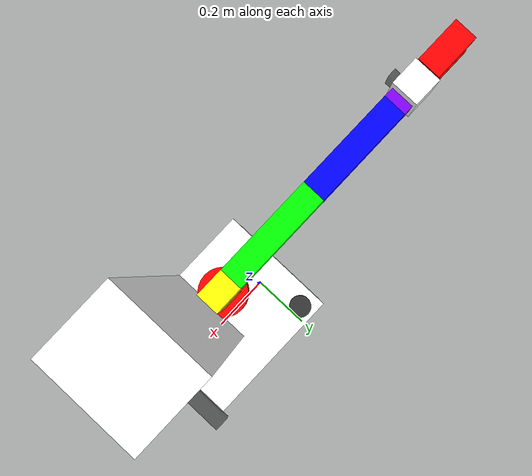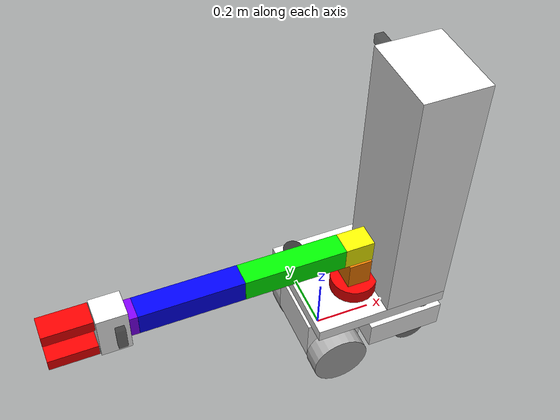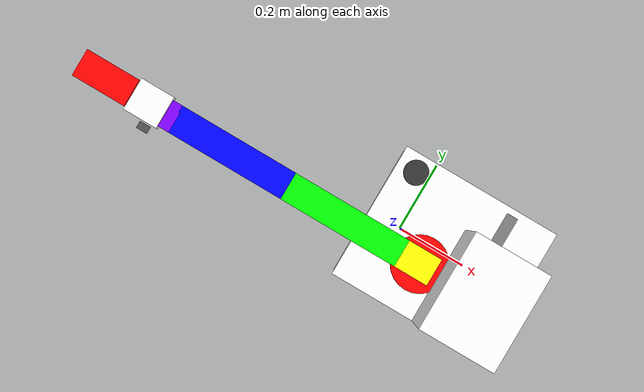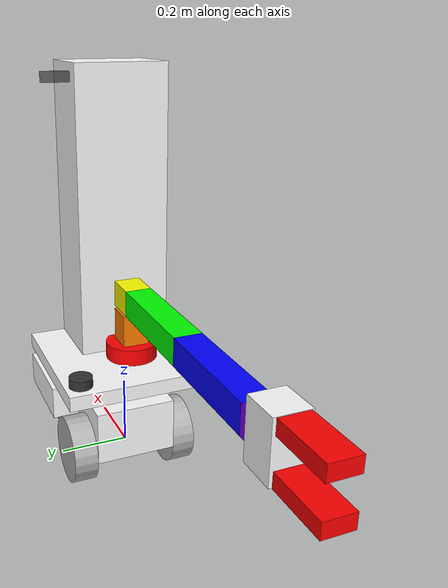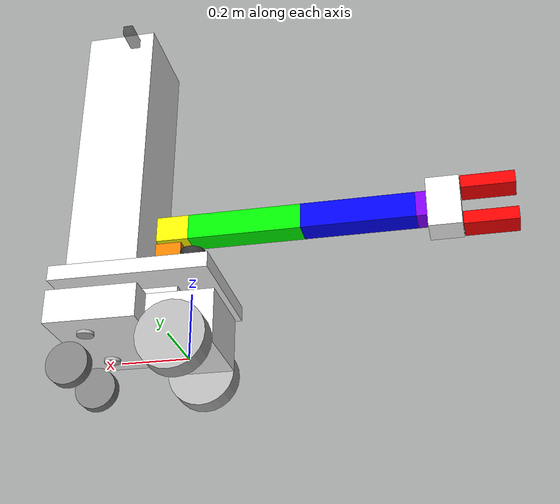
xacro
<?xml version='1.0' encoding='utf-8'?>
<robot xmlns:xacro="http://www.ros.org/wiki/xacro" name="housem8">

  <xacro:include filename="$(find housem8_manipulator_server)/../../../housem8_robot/housem8_description/robots/housem8.xacro"/>

  <xacro:include filename="$(find housem8_manipulator_server)/../../../housem8_robot/housem8_description/robots/housem8.ros1_control.xacro"/>

</robot>

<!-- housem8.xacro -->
<robot xmlns:xacro="http://www.ros.org/wiki/xacro" name="housem8">

    <link name="base_footprint">
    </link>

    <link name="mobilebaseI">
        <visual name="mobilebaseI">
            <origin xyz="0.0 0.0 0.080" rpy="0.0 0.0 0.0" />
            <geometry name="mobilebaseI">
                <box size="0.200 0.240 0.160" />
            </geometry>
            <material name="white">
                <color rgba="1.0 1.0 1.0 1.0" />
            </material>
        </visual>
        <inertial>
            <mass value="10.0"/>
            <inertia ixx="0.3" ixy="0.0" ixz="0.0"
                     iyy="0.3" iyz="0.0" izz="0.3"/>
        </inertial>
        <collision>
            <origin xyz="0.0 0.0 0.080" rpy="0.0 0.0 0.0" />
            <geometry name="mobilebaseI">
                <box size="0.200 0.240 0.160" />
            </geometry>
        </collision>
    </link>

    <joint name="basefootprint_to_base" type="fixed">
        <parent link="base_footprint"/>
        <child link="mobilebaseI"/>
        <origin rpy="0 0 0" xyz="0 0 0"/>
    </joint>

    <link name="mobilebaseII">
        <visual name="mobilebaseII">
            <origin xyz="0.0 0.0 0.00" rpy="0.0 0.0 0.0" />
            <geometry name="mobilebaseII">
                <box size="0.270 0.400 0.100" />
            </geometry>
            <material name="white" />
        </visual>

        <inertial>
            <mass value="5.0" />
            <inertia ixx="0.3" ixy="0.0" ixz="0.0"
                     iyy="0.3" iyz="0.0" izz="0.3"/>
        </inertial>

        <collision>
            <origin xyz="0.0 0.0 0.00" rpy="0.0 0.0 0.0" />
            <geometry name="mobilebaseII">
                <box size="0.270 0.400 0.100" />
            </geometry>
        </collision>
    </link>

    <joint name="MobileBaseWheel" type="fixed">
        <origin xyz="0.235 0.0 0.110" rpy="0.0 0.0 0.0"/>
        <parent link="mobilebaseI"/>
        <child link="mobilebaseII"/>
    </joint>

    <link name="Wheel_Right">
        <inertial>
            <mass value="1.5" />
            <inertia ixx="0.0129" ixy="0" ixz="0" iyy="0.0129" iyz="0" izz="0.0156" />
        </inertial>

        <visual name="Wheel">
            <origin xyz="0.0 0.0 0.0" rpy="0.0 0.0 0.0" />
            <geometry name="wheel">
                <cylinder radius="0.100" length="0.070" />
            </geometry>
            <material name="Gray1">
                <color rgba="0.7 0.7 0.7 1.0" />
            </material>
        </visual>
        <collision>
            <origin xyz="0.0 0.0 0.0" rpy="0.0 0.0 0.0" />
            <geometry name="wheel">
                <cylinder radius="0.100" length="0.070" />
            </geometry>
        </collision>
    </link>

    <joint name="wheel_right_joint" type="continuous">
        <origin xyz="0.0 0.155 0.005" rpy="1.57 0.0 0.0"/>
        <parent link="mobilebaseI"/>
        <child link="Wheel_Right"/>
        <axis xyz="0 0 1"/>
    </joint>

    <link name="Wheel_Left">
        <inertial>
            <mass value="1.5" />
            <inertia ixx="0.0129" ixy="0" ixz="0" iyy="0.0129" iyz="0" izz="0.0156" />
        </inertial>

        <visual name="Wheel">
            <origin xyz="0.0 0.0 0.0" rpy="0.0 0.0 0.0" />
            <geometry name="wheel">
                <cylinder radius="0.100" length="0.070" />
            </geometry>
            <material name="Gray1">
                <color rgba="0.7 0.7 0.7 1.0" />
            </material>
        </visual>

        <collision>
            <origin xyz="0.0 0.0 0.0" rpy="0.0 0.0 0.0" />
            <geometry name="wheel">
                <cylinder radius="0.100" length="0.070" />
            </geometry>
        </collision>
    </link>

    <joint name="wheel_left_joint" type="continuous">
        <origin xyz="0.0 -0.155 0.005" rpy="1.57 0.0 0.0"/>
        <parent link="mobilebaseI"/>
        <child link="Wheel_Left"/>
        <axis xyz="0 0 1"/>
    </joint>

    <link name="CasterCase_Left">
        <inertial>
            <mass value="0.2"/>
            <inertia ixx="7.97741e-05" ixy="0" ixz="0" iyy="7.97741e-05" iyz="0" izz="7.97741e-05" />
        </inertial>
        <visual name="CasterCase">
            <origin xyz="0.0 0.0 -0.005" rpy="0.0 0.0 0.0" />
            <geometry name="CasterC">
                <cylinder radius="0.025" length="0.010" />
            </geometry>
            <material name="Gray1">
                <color rgba="0.7 0.7 0.7 1.0" />
            </material>
        </visual>
        <collision>
            <origin xyz="0.0 0.0 -0.005" rpy="0.0 0.0 0.0" />
            <geometry name="CasterC">
                <cylinder radius="0.025" length="0.010" />
            </geometry>
        </collision>
    </link>

    <joint name="CasterCL" type="fixed">
        <origin xyz="0.040 -0.110 -0.05" rpy="0.0 0.0 0.0"/>
        <parent link="mobilebaseII"/>
        <child link="CasterCase_Left"/>
        <axis xyz="0 0 1"/>
    </joint>

    <link name="CasterWheel_Left">
        <inertial>
            <mass value="0.2"/>
            <inertia ixx="7.97741e-05" ixy="0" ixz="0" iyy="7.97741e-05" iyz="0" izz="7.97741e-05" />
        </inertial>
        <visual name="CasterWheel">
            <origin xyz="0.0 0.0 0.0" rpy="0.0 0.0 0.0" />
            <geometry name="Casterwheel">
                <cylinder radius="0.0625" length="0.036" />
            </geometry>
            <material name="Gray2">
                <color rgba="0.5 0.5 0.5 1.0" />
            </material>
        </visual>
        <collision>
            <origin xyz="0.0 0.0 0.0" rpy="0.0 0.0 0.0" />
            <geometry name="Casterwheel">
                <cylinder radius="0.0625" length="0.036" />
            </geometry>
        </collision>
    </link>

    <joint name="Casterwheel_left_joint" type="continuous">
        <origin xyz="0.0405 0.0 -0.0925" rpy="1.57 0.0 0.0"/>
        <parent link="CasterCase_Left"/>
        <child link="CasterWheel_Left"/>
        <axis xyz="0 0 1"/>
    </joint>

    <link name="CasterCase_Right">
        <inertial>
            <mass value="0.2"/>
            <inertia ixx="7.97741e-05" ixy="0" ixz="0" iyy="7.97741e-05" iyz="0" izz="7.97741e-05" />
        </inertial>

        <visual name="CasterCase">
            <origin xyz="0.0 0.0 -0.005" rpy="0.0 0.0 0.0" />
            <geometry name="CasterC">
                <cylinder radius="0.025" length="0.010" />
            </geometry>
            <material name="Gray1">
                <color rgba="0.7 0.7 0.7 1.0" />
            </material>
        </visual>
        <collision>
            <origin xyz="0.0 0.0 -0.005" rpy="0.0 0.0 0.0" />
            <geometry name="CasterC">
                <cylinder radius="0.025" length="0.010" />
            </geometry>
        </collision>
    </link>

    <joint name="CasterCR" type="fixed">
        <origin xyz="0.040 0.110 -0.05" rpy="0.0 0.0 0.0"/>
        <parent link="mobilebaseII"/>
        <child link="CasterCase_Right"/>
        <axis xyz="1.0 0.0 0.0"/>

    </joint>

    <link name="CasterWheel_Right">
        <inertial>
            <mass value="0.3"/>
            <inertia ixx="7.97741e-05" ixy="0" ixz="0" iyy="7.97741e-05" iyz="0" izz="7.97741e-05" />
        </inertial>
        <visual name="CasterWheel">
            <origin xyz="0.0 0.0 0.0" rpy="0.0 0.0 0.0"/>
            <geometry name = "Casterwheel">
                <cylinder radius="0.0625" length="0.036"/>
            </geometry>
            <material name="Gray2">
                <color rgba="0.5 0.5 0.5 1.0" />
            </material>
        </visual>
        <collision>
            <origin xyz="0.0 0.0 0.0" rpy="0.0 0.0 0.0"/>
            <geometry name = "Casterwheel">
                <cylinder radius="0.0625" length="0.036"/>
            </geometry>
        </collision>
    </link>

    <joint name="Casterwheel_right_joint" type="continuous">
        <origin xyz="0.0405 0.0 -0.0925" rpy="1.57 0.0 0.0" />
        <parent link="CasterCase_Right" />
        <child link="CasterWheel_Right" />
        <axis xyz="0 0 1"/>
    </joint>

    <link name="mobilebaseIII">
        <inertial>
            <mass value="2.0" />
            <inertia ixx="0.6" ixy="0.0" ixz="0.0" iyy="0.1" iyz="0.0" izz="0.4" />
        </inertial>

        <visual name="mobilebaseIII">
            <origin xyz="0.0 0.0 0.0" rpy="0.0 0.0 0.0" />
            <geometry name="mobilebaseIII">
                <box size="0.235 0.180 0.030" />
            </geometry>
            <material name="white" />
        </visual>
        <collision>
            <origin xyz="0.0 0.0 0.0" rpy="0.0 0.0 0.0" />
            <geometry name="mobilebaseIII">
                <box size="0.235 0.180 0.030" />
            </geometry>
        </collision>
    </link>

    <joint name="MobileBaseLidar" type="fixed">
        <origin xyz="-0.100 0.0 0.065" rpy="0.0 0.0 0.0" />
        <parent link="mobilebaseII" />
        <child link="mobilebaseIII" />
        <axis xyz="0 0 1"/>
    </joint>

    <link name="mobilebaseIV">
        <inertial>
            <mass value="1.0" />
            <inertia ixx="0.2" ixy="0.0" ixz="0.0" iyy="0.3" iyz="0.0" izz="0.1" />
        </inertial>

        <visual name="mobilebaseIV">
            <origin xyz="0.0 0.0 0.0" rpy="0.0 0.0 0.0" />
            <geometry name="mobilebaseIV">
                <box size="0.470 0.400 0.045" />
            </geometry>
            <material name="white" />
        </visual>
        <collision>
            <origin xyz="0.0 0.0 0.0" rpy="0.0 0.0 0.0" />
            <geometry name="mobilebaseIV">
                <box size="0.470 0.400 0.045" />
            </geometry>
        </collision>
    </link>

    <joint name="MobileBaseTorsol" type="fixed">
        <origin xyz="0.0 0.0 0.0375" rpy="0.0 0.0 0.0" />
        <parent link="mobilebaseIII" />
        <child link="mobilebaseIV" />
    </joint>

    <link name="Lidar_Front">
        <inertial>
            <mass value="0.3" />
            <inertia ixx="0.4" ixy="0.0" ixz="0.0" iyy="0.7" iyz="0.0" izz="0.4" />
        </inertial>

        <visual name="Lidar_Front">
            <origin xyz="0.0 0.0 0.0" rpy="0.0 0.0 0.0" />
            <geometry name="Lidar_front">
                <cylinder radius="0.035" length="0.030" />
            </geometry>
            <material name="Gray4">
                <color rgba="0.2 0.2 0.2 1.0" />
            </material>
        </visual>

        <collision>
            <origin xyz="0.0 0.0 0.0" rpy="0.0 0.0 0.0" />
            <geometry name="Lidar_front">
                <cylinder radius="0.035" length="0.030" />
            </geometry>
        </collision>
    </link>

    <joint name="LidarF" type="fixed">
        <origin xyz="-0.178 0.150 0.075" rpy="0.0 0.0 3.15159" />
        <parent link="mobilebaseIII" />
        <child link="Lidar_Front" />
        <axis xyz="1.0 0.0 0.0" />
    </joint>

    <link name="Lidar_Back">
        <inertial>
            <mass value="0.3" />
            <inertia ixx="0.4" ixy="0.0" ixz="0.0" iyy="0.7" iyz="0.0" izz="0.4" />
        </inertial>

        <visual name="Lidar_Back">
            <origin xyz="0.0 0.0 0.0" rpy="0.0 0.0 0.0" />
            <geometry name="Lidar_back">
                <cylinder radius="0.035" length="0.030" />
            </geometry>
            <material name="Gray4">
                <color rgba="0.2 0.2 0.2 1.0" />
            </material>
        </visual>
        <collision>
            <origin xyz="0.0 0.0 0.0" rpy="0.0 0.0 0.0" />
            <geometry name="Lidar_back">
                <cylinder radius="0.035" length="0.030" />
            </geometry>
        </collision>
    </link>

    <joint name="LidarB" type="fixed">
        <origin xyz="0.178 -0.150 0.0" rpy="0.0 0.0 0.0" />
        <parent link="mobilebaseIII" />
        <child link="Lidar_Back" />
    </joint>

    <link name="Torsol">
        <inertial>
            <mass value="0.5" />
            <inertia ixx="3.0" ixy="3.0" ixz="3.0" iyy="3.0" iyz="3.0" izz="3.0" />
        </inertial>

        <visual name="Body">
            <origin xyz="0.0 0.0 0.445" rpy="0.0 0.0 0.0" />
            <geometry name="body">
                <box size="0.220 0.285 0.890" />
            </geometry>
            <material name="white" />
        </visual>
        <collision>
            <origin xyz="0.0 0.0 0.445" rpy="0.0 0.0 0.0" />
            <geometry name="body">
                <box size="0.220 0.285 0.890" />
            </geometry>
        </collision>
    </link>

    <joint name="BaseTorsol" type="fixed">
        <origin xyz="0.125 -0.0575 0.0225" rpy="0.0 0.0 0.0"/>
        <parent link="mobilebaseIV"/>
        <child link="Torsol"/>
    </joint>

    <link name="TorsolCamera">
        <inertial>
            <origin xyz="0.0 1.0 0.0" rpy="0.0 0.0 0.0" />
            <mass value="0.2" />
            <inertia ixx="0.6" ixy="0.0" ixz="0.0" iyy="0.1" iyz="0.0" izz="0.1" />
        </inertial>

        <visual>
            <origin xyz="0.0 0.0 0.0" rpy="0.0 0.0 0.0" />
            <geometry name="Camera">
                <box size="0.03 0.08 0.03" />
            </geometry>
            <material name="black">
                <color rgba="0.0 0.0 0.0 0.5" />
            </material>
        </visual>
        <collision>
            <origin xyz="0.0 0.0 0.0" rpy="0.0 0.0 0.0" />
            <geometry name="Camera">
                <box size="0.03 0.08 0.03" />
            </geometry>
        </collision>
    </link>

    <joint name="BodyCam" type="fixed">
        <origin xyz="-0.05 0.182 0.85" rpy="0.0 0.0 0.0" />
        <parent link="Torsol" />
        <child link="TorsolCamera" />
        <axis xyz="0.0 1.0 0.0" />
        <limit effort="1000.0" lower="-1.8" upper="1.8" velocity="0.5"/>
    </joint>

    <link name="LinearJoint">
        <inertial>
            <mass value="0.5" />
            <inertia ixx="3.0" ixy="-3.0" ixz="3.0"
                     iyy="4.0" iyz="4.0" izz="3.0" />
        </inertial>

        <visual>
            <origin xyz="0.0 0.0 0.0" rpy="0.0 0.0 0.0" />
            <geometry name="LinearJ">
                <cylinder radius="0.080" length="0.050" />
            </geometry>
            <material name="Red">
                <color rgba="1.0 0.0 0.0 1.0" />
            </material>
        </visual>
        <collision>
            <origin xyz="0.0 0.0 0.0" rpy="0.0 0.0 0.0" />
            <geometry name="LinearJ">
                <cylinder radius="0.080" length="0.050" />
            </geometry>
        </collision>
    </link>

    <joint name="Mani_J0" type="prismatic">
        <origin xyz="-0.17 0.0 0.0275" rpy="0.0 0.0 0.0" />
        <parent link="Torsol" />
        <child link="LinearJoint" />
        <axis xyz="0.0 0.0 1.0" />
        <limit lower="0.0" upper="0.650" effort="87.0" velocity="2.15"/>
        <dynamics damping="0.5" friction="0.2"/>
    </joint>

    <link name="Revlink1">
        <inertial>
            <mass value="0.1" />
            <inertia ixx="0.4" ixy="0.0" ixz="0.0"
                     iyy="0.4" iyz="0.7" izz="0.1" />
        </inertial>

        <visual>
            <origin xyz="0.0 0.0 -0.050" rpy="0.0 0.0 0.0" />
            <geometry name="RevL1">
                <box size="0.080 0.080 0.100" />
            </geometry>
            <material name="Orange">
                <color rgba="1.0 0.5 0.0 1.0" />
            </material>
        </visual>
        <collision>
            <origin xyz="0.0 0.0 -0.050" rpy="0.0 0.0 0.0" />
            <geometry name="RevL1">
                <box size="0.080 0.080 0.100" />
            </geometry>
        </collision>
    </link>

    <joint name="Mani_J1" type="revolute">
        <origin xyz="0.0 0.0 0.125" rpy="0.0 0.0 3.14"/>
        <parent link="LinearJoint"/>
        <child link="Revlink1"/>
        <axis xyz="0 0 1"/>
        <limit effort="87" lower="-1.3" upper="1.3" velocity="2.1750"/>
        <dynamics damping="0.5" friction="0.2"/>
    </joint>

    <link name="Revlink2">
        <inertial>
            <mass value="0.1" />
            <inertia ixx="0.9" ixy="0.0" ixz="0.0" iyy="0.4" iyz="0.0" izz="0.9" />
        </inertial>

        <visual>
            <origin xyz="0.0 0.0 -0.050" rpy="0.0 0.0 0.0" />
            <geometry name="RevL2">
                <box size="0.080 0.080 0.100" />
            </geometry>
            <material name="Yellow">
                <color rgba="1.0 1.0 0.0 1.0" />
            </material>
        </visual>
        <collision>
            <origin xyz="0.0 0.0 -0.050" rpy="0.0 0.0 0.0" />
            <geometry name="RevL2">
                <box size="0.080 0.080 0.100" />
            </geometry>
        </collision>
    </link>

    <joint name="Mani_J2" type="revolute">
        <origin xyz="0.06 0.0 0.05" rpy="0.0 1.57 0.0" />
        <parent link="Revlink1" />
        <child link="Revlink2" />
        <axis xyz="0.0 0.0 1.0" />
        <limit effort="87" lower="-1.5" upper="1.5" velocity="2.1750"/>
        <dynamics damping="0.5" friction="0.2"/>
    </joint>

    <link name="Revlink3">
        <inertial>
            <mass value="0.1" />
            <inertia ixx="0.9" ixy="0.0" ixz="0.0" iyy="0.1" iyz="0.5" izz="0.8" />
        </inertial>

        <visual>
            <origin xyz="-0.175 0.0 0.0" rpy="0.0 1.57 0.0" />
            <geometry name="RevL3">
                <box size="0.080 0.080 0.350" />
            </geometry>
            <material name="Green">
                <color rgba="0.0 1.0 0.0 1.0" />
            </material>
        </visual>
        <collision>
            <origin xyz="-0.175 0.0 0.0" rpy="0.0 1.57 0.0" />
            <geometry name="RevL3">
                <box size="0.080 0.080 0.350" />
            </geometry>
        </collision>
    </link>

    <joint name="Mani_J3" type="revolute">
        <origin xyz="0.0 0.0 0.0" rpy="1.57 1.57 0.0" />
        <parent link="Revlink2"/>
        <child link="Revlink3"/>
        <axis xyz="0 0 1"/>
        <limit effort="87" lower="-1.2" upper="2.0" velocity="2.1750"/>
        <dynamics damping="0.5" friction="0.2"/>
    </joint>

    <link name="Revlink4">
         <inertial>
            <mass value="0.1" />
            <inertia ixx="0.9" ixy="0.0" ixz="0.0" iyy="0.1" iyz="0.5" izz="0.8" />
        </inertial>

        <visual>
            <origin xyz="-0.175 0.0 0.0" rpy="0.0 1.57 0.0" />
            <geometry name="RevL4">
                <box size="0.080 0.080 0.350" />
            </geometry>
            <material name="Blue">
                <color rgba="0.0 0.0 1.0 1.0" />
            </material>
        </visual>
        <collision>
            <origin xyz="-0.175 0.0 0.0" rpy="0.0 1.57 0.0" />
            <geometry name="RevL4">
                <box size="0.080 0.080 0.350" />
            </geometry>
        </collision>
    </link>

    <joint name="Mani_J4" type="revolute">
        <origin xyz="-0.350 0.0 0.0" rpy="0.0 0.0 0.0" />
        <parent link="Revlink3" />
        <child link="Revlink4" />
        <axis xyz="0 0 1.0"/>
        <limit effort="87" lower="-1.9" upper="1.9" velocity="2.1750"/>
        <dynamics damping="0.5" friction="0.2"/>
    </joint>

    <link name="Revlink5">
        <inertial>
            <mass value="0.1" />
            <inertia ixx="0.1" ixy="0.0" ixz="0.0" iyy="0.1" iyz="0.0" izz="0.1" />
        </inertial>

        <visual>
            <origin xyz="-0.04 0.0 0.0" rpy="0.0 1.57 0.0" />
            <geometry name="RevL5">
                <box size="0.080 0.080 0.050" />
            </geometry>
            <material name="Purple">
                <color rgba="0.5 0.0 1.0 1.0" />
            </material>
        </visual>
        <collision>
            <origin xyz="-0.04 0.0 0.0" rpy="0.0 1.57 0.0" />
            <geometry name="RevL5">
                <box size="0.080 0.080 0.050" />
            </geometry>
        </collision>
    </link>

    <joint name="Mani_J5" type="revolute">
        <origin xyz="-0.331 0.0 -0.0" rpy="0.0 0.0 0.0" />
        <parent link="Revlink4" />
        <child link="Revlink5" />
        <axis xyz="0.0 0.0 1.0" />
        <limit effort="87" lower="-3.14" upper="3.14" velocity="2.1750"/>
        <dynamics damping="0.5" friction="0.2"/>
    </joint>

    <link name="Hand">
        <inertial>
            <mass value="0.05" />
            <inertia ixx="0.4" ixy="0.0" ixz="0.0" iyy="0.4" iyz="0.0" izz="0.4" />
        </inertial>

        <visual>
            <origin xyz="-0.0 0.0 0.0475" rpy="0.0 1.57 0.0" />
            <geometry name="Hand">
                <box size="0.100 0.160 0.095" />
            </geometry>
            <material name="white" />
        </visual>
        <collision>
            <origin xyz="-0.0 0.0 0.0475" rpy="0.0 1.57 0.0" />
            <geometry name="Hand">
                <box size="0.100 0.160 0.095" />
            </geometry>
        </collision>
    </link>

    <joint name="Mani_J6" type="revolute">
        <origin xyz="-0.05 -0.0 -0.0" rpy="0.0 -1.57 0.0" />
        <parent link="Revlink5" />
        <child link="Hand" />
        <axis xyz="0.0 0.0 1.0" />
        <limit effort="87" lower="-3.14" upper="3.14" velocity="2.1750"/>
        <dynamics damping="0.5" friction="0.2"/>
    </joint>

    <link name="FingerLeft">
        <inertial>
            <mass value="0.05" />
            <inertia ixx="0.5" ixy="0.0" ixz="0.0" iyy="0.4" iyz="0.0" izz="0.5" />
        </inertial>

        <visual>
            <origin xyz="-0.080 0.0 0.0" rpy="0.0 0.0 0.0" />
            <geometry name="FingerL">
                <box size="0.160 0.040 0.080" />
            </geometry>
            <material name="Red" />
        </visual>
        <collision>
            <origin xyz="-0.080 0.0 0.0" rpy="0.0 0.0 0.0" />
            <geometry name="FingerL">
                <box size="0.160 0.040 0.080" />
            </geometry>
        </collision>
    </link>

    <joint name="FingerL" type="prismatic">
        <origin xyz="-0.0 -0.06 0.1" rpy="0.0 1.57 0.0" />
        <parent link="Hand" />
        <child link="FingerLeft" />
        <axis xyz="0.0 1.0 0.0" />
        <limit effort="1000" lower="-0.025" upper="0.04" velocity="0.5"/>
        <dynamics damping="0.5" friction="0.2"/>
    </joint>

    <link name="FingerRight">
        <inertial>
            <mass value="0.05" />
            <inertia ixx="0.5" ixy="0.0" ixz="0.0" iyy="0.4" iyz="0.0" izz="0.5" />
        </inertial>

        <visual>
            <origin xyz="-0.080 0.0 0.0" rpy="0.0 0.0 0.0" />
            <geometry name="FingerR">
                <box size="0.160 0.040 0.080" />
            </geometry>
            <material name="Red" />
        </visual>
        <collision>
            <origin xyz="-0.080 0.0 0.0" rpy="0.0 0.0 0.0" />
            <geometry name="FingerR">
                <box size="0.160 0.040 0.080" />
            </geometry>
        </collision>
    </link>

    <joint name="FingerR" type="prismatic">
        <origin xyz="-0.0 0.06 0.1" rpy="0.0 1.57 0.0" />
        <parent link="Hand" />
        <child link="FingerRight" />
        <axis xyz="0 1 0"/>
        <limit effort="87" lower="-0.04" upper="0.025" velocity="0.5"/>
        <dynamics damping="0.5" friction="0.2"/>
    </joint>

    <link name="TipPoint"/>
    <joint name="FixedTipJoint" type="fixed">
        <origin xyz="0.0 0.0 0.260" rpy="0.0 0.0 1.570796" />
        <parent link="Hand" />
        <child link="TipPoint" />
    </joint>

    <link name="HandCamera">

        <inertial>
            <mass value="0.2" />
            <inertia ixx="0.6" ixy="0.0" ixz="0.0" iyy="0.1" iyz="0.0" izz="0.1" />
        </inertial>

        <visual name="Camera">
            <origin xyz="0.0 0.0 0.0" rpy="0.0 0.0 0.0" />
            <geometry name="Camera">
                <box size="0.02 0.08 0.03" />
            </geometry>
            <material name="black">
                <color rgba="0.0 0.0 0.0 0.5" />
            </material>
        </visual>
        <collision>
            <origin xyz="0.0 0.0 0.0" rpy="0.0 0.0 0.0" />
            <geometry name="Camera">
                <box size="0.02 0.08 0.03" />
            </geometry>
        </collision>
    </link>

    <joint name="HandCam" type="fixed">
        <origin xyz="-0.0625 0.0 0.03" rpy="0.0 0.0 0.0" />
        <parent link="Hand" />
        <child link="HandCamera" />
    </joint>

    <link name='rgb_cam_camera_link'/>

    <joint name="rgb_cam_camera_link_joint" type="fixed">
		<origin rpy="0 0 0" xyz="0.04 0.0 0.2"/>
		<parent link="TorsolCamera"/>
		<child link="rgb_cam_camera_link"/>
	</joint>

    <link name="rgb_cam_camera_link_frame"/>

    <joint name="rgb_cam_camera_frame_joint" type="fixed">
        <origin xyz="0.01 0 0" rpy="0 0 0" />
        <parent link="rgb_cam_camera_link" />
        <child link="rgb_cam_camera_link_frame" />
        <axis xyz="0 0 0"/>
     </joint>

    <link name='rgb_hand_cam_camera_link'/>

    <joint name="rgb_hand_cam_camera_link_joint" type="fixed">
		<origin rpy="0 0 0" xyz="0.04 0.0 0.2"/>
		<parent link="HandCamera"/>
		<child link="rgb_hand_cam_camera_link"/>
	</joint>

    <link name="rgb_hand_cam_camera_link_frame"/>

    <joint name="rgb_hand_cam_camera_frame_joint" type="fixed">
        <origin xyz="0.01 0 0" rpy="0 0 0" />
        <parent link="rgb_hand_cam_camera_link" />
        <child link="rgb_hand_cam_camera_link_frame" />
        <axis xyz="0 0 0"/>
     </joint>

</robot>
